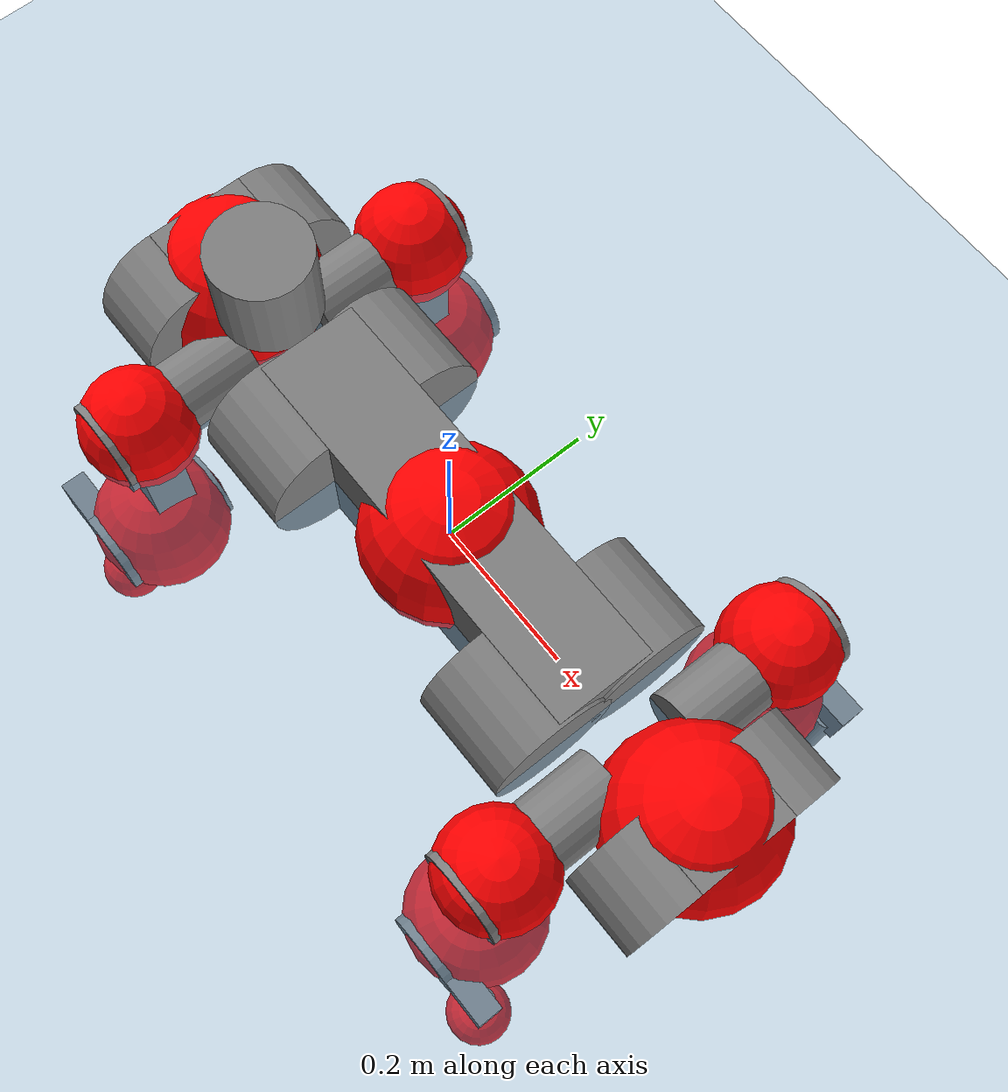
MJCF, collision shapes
<mujoco model="anymal_c">
  <compiler angle="radian" assetdir="assets" balanceinertia="true" inertiafromgeom="false"/>

  <option timestep="0.005" density="1.2" viscosity="2e-05"/>

  <size nkey="1"/>

  <visual>
    <quality shadowsize="8192"/>
    <map shadowclip="0.5"/>
  </visual>

  <default>
    <default class="/">
      <material specular="0" shininess="0.25"/>
      <geom contype="0" conaffinity="0" group="1" solref="-1000 -80"/>
      <site size="0.01 0.005 0.005" group="5"/>
      <general forcelimited="true" forcerange="-80 80" biastype="affine" gainprm="80" biasprm="0 -80 -2"/>
      <default class="anymal_c">
        <joint armature="0.01" damping="0.01" frictionloss="0.1"/>
        <default class="visual">
          <geom type="mesh" group="2"/>
          <default class="visual_zflip"/>
        </default>
        <default class="collision">
          <geom type="cylinder" group="3"/>
          <default class="foot">
            <geom size="0.03 0 0" type="sphere" condim="6" priority="1" friction="0.8 0.02 0.01" solimp="0.015 1 0.03"/>
          </default>
        </default>
      </default>
      <default class="reward_collision_sphere">
        <geom group="5" rgba="1 0 0 1"/>
      </default>
    </default>
  </default>

  <asset>
    <texture type="skybox" colorspace="auto" name="//unnamed_texture_0" builtin="gradient" rgb1="0.95 0.95 0.95" rgb2="0.95 0.95 0.95" width="100" height="600"/>
    <texture type="2d" colorspace="auto" name="texplane" builtin="checker" rgb1="0.345 0.575 0.748" rgb2="0.345 0.575 0.748" markrgb="1 1 1" width="512" height="512"/>
    <texture type="2d" colorspace="linear" name="base" file="base.png"/>
    <texture type="2d" colorspace="linear" name="top_shell" file="top_shell.png"/>
    <texture type="2d" colorspace="linear" name="bottom_shell" file="bottom_shell.png"/>
    <texture type="2d" colorspace="linear" name="remote" file="remote.png"/>
    <texture type="2d" colorspace="linear" name="hatch" file="hatch.png"/>
    <texture type="2d" colorspace="linear" name="handle" file="handle.png"/>
    <texture type="2d" colorspace="linear" name="face" file="face.png"/>
    <texture type="2d" colorspace="linear" name="battery" file="battery.png"/>
    <texture type="2d" colorspace="linear" name="lidar_cage" file="lidar_cage.png"/>
    <texture type="2d" colorspace="linear" name="depth_camera" file="depth_camera.png"/>
    <texture type="2d" colorspace="linear" name="wide_angle_camera" file="wide_angle_camera.png"/>
    <texture type="2d" colorspace="linear" name="lidar" file="lidar.png"/>
    <texture type="2d" colorspace="linear" name="drive" file="drive.png"/>
    <texture type="2d" colorspace="linear" name="hip_l" file="hip_l.png"/>
    <texture type="2d" colorspace="linear" name="shank_l" file="shank_l.png"/>
    <texture type="2d" colorspace="linear" name="foot" file="foot.png"/>
    <texture type="2d" colorspace="linear" name="thigh" file="thigh.png"/>
    <texture type="2d" colorspace="linear" name="shank_r" file="shank_r.png"/>
    <texture type="2d" colorspace="linear" name="hip_r" file="hip_r.png"/>
    <material name="MatPlane" class="/" texture="texplane" texuniform="true" texrepeat="2 2" specular="0.9" shininess="0.5"/>
    <material name="black_plastic" class="/" rgba="0.007 0.007 0.007 1"/>
    <material name="green" class="/" rgba="0.052 0.178 0.033 1"/>
    <material name="red" class="/" rgba="0.178 0.006 0.005 1"/>
    <material name="yellow" class="/" rgba="0.178 0.119 0.006 1"/>
    <material name="lwl" class="/" rgba="0.8 0.8 0.8 1"/>
    <material name="base" class="/" texture="base"/>
    <material name="top_shell" class="/" texture="top_shell"/>
    <material name="bottom_shell" class="/" texture="bottom_shell"/>
    <material name="hip_l" class="/" texture="hip_l"/>
    <material name="thigh" class="/" texture="thigh"/>
    <material name="shank_l" class="/" texture="shank_l"/>
    <material name="foot" class="/" texture="foot"/>
    <material name="hip_r" class="/" texture="hip_r"/>
    <material name="shank" class="/" texture="shank_r"/>
    <material name="hatch" class="/" texture="hatch"/>
    <material name="remote" class="/" texture="remote"/>
    <material name="handle" class="/" texture="handle"/>
    <material name="face" class="/" texture="face"/>
    <material name="depth_camera" class="/" texture="depth_camera"/>
    <material name="wide_angle_camera" class="/" texture="wide_angle_camera"/>
    <material name="battery" class="/" texture="battery"/>
    <material name="lidar_cage" class="/" texture="lidar_cage"/>
    <material name="lidar" class="/" texture="lidar"/>
    <material name="drive" class="/" texture="drive"/>
    <mesh name="base_0" class="/" file="base_0.obj"/>
    <mesh name="base_1" class="/" file="base_1.obj"/>
    <mesh name="base_2" class="/" file="base_2.obj"/>
    <mesh name="base_3" class="/" file="base_3.obj"/>
    <mesh name="base_4" class="/" file="base_4.obj"/>
    <mesh name="base_5" class="/" file="base_5.obj"/>
    <mesh name="top_shell" class="/" file="top_shell.obj"/>
    <mesh name="bottom_shell" class="/" file="bottom_shell.obj"/>
    <mesh name="remote" class="/" file="remote.obj"/>
    <mesh name="handle" class="/" file="handle.obj"/>
    <mesh name="face" class="/" file="face.obj"/>
    <mesh name="wide_angle_camera" class="/" file="wide_angle_camera.obj"/>
    <mesh name="depth_camera" class="/" file="depth_camera.obj"/>
    <mesh name="battery" class="/" file="battery.obj"/>
    <mesh name="lidar_cage" class="/" file="lidar_cage.obj"/>
    <mesh name="lidar" class="/" file="lidar.obj"/>
    <mesh name="drive" class="/" file="drive.obj"/>
    <mesh name="hip_l" class="/" file="hip_l.obj"/>
    <mesh name="thigh" class="/" file="thigh.obj"/>
    <mesh name="shank_l" class="/" file="shank_l.obj"/>
    <mesh name="foot" class="/" file="foot.obj"/>
    <mesh name="hip_r" class="/" file="hip_r.obj"/>
    <mesh name="hatch" class="/" file="hatch.obj"/>
    <mesh name="shank_r" class="/" file="shank_r.obj"/>
  </asset>

  <worldbody>
    <geom name="floor" class="/" size="100 100 0.125" type="plane" group="0" material="MatPlane"/>
    <light name="toplight_shadow" class="/" pos="0 0 5" dir="0.0990148 0.0990148 -0.990148" type="directional" ambient="0.04 0.04 0.04" diffuse="0.55 0.55 0.55" specular="0.12 0.12 0.12"/>
    <light name="toplight_fill" class="/" pos="0 0 5" dir="0.0990148 0.0990148 -0.990148" type="directional" castshadow="false" ambient="0.04 0.04 0.04" diffuse="0.3 0.3 0.3" specular="0.08 0.08 0.08"/>
    <body name="trunk" childclass="anymal_c" pos="0.000536751 -0.000247196 0.00114232" quat="1 -5.58614e-05 -0.000163545 -6.73686e-05">
      <inertial pos="0.00169395 0.000818803 0.0372737" quat="0.500037 0.499846 0.500353 0.499764" mass="15.5908" diaginertia="0.524717 0.611029 0.104344"/>
      <joint name="//unnamed_joint_0" type="free" armature="0" damping="0" frictionloss="0"/>
      <geom name="//unnamed_geom_1" class="visual" material="green" mesh="base_0"/>
      <geom name="//unnamed_geom_2" class="visual" material="yellow" mesh="base_1"/>
      <geom name="//unnamed_geom_3" class="visual" material="red" mesh="base_2"/>
      <geom name="//unnamed_geom_4" class="visual" material="black_plastic" mesh="base_3"/>
      <geom name="//unnamed_geom_5" class="visual" material="lwl" mesh="base_4"/>
      <geom name="//unnamed_geom_6" class="visual" material="base" mesh="base_5"/>
      <geom name="trunk_1" class="collision" size="0.27454 0.0662683 0.0852021" type="box"/>
      <geom name="trunk_2" class="collision" size="0.0852021 0.068635" pos="0.210212 0.0703095 0" quat="0.707107 0 0.707107 0"/>
      <geom name="trunk_3" class="collision" size="0.0852021 0.068635" pos="-0.210212 0.0703095 0" quat="0.707107 0 0.707107 0"/>
      <geom name="trunk_4" class="collision" size="0.0852021 0.068635" pos="0.210212 -0.0703095 0" quat="0.707107 0 0.707107 0"/>
      <geom name="trunk_5" class="collision" size="0.0852021 0.068635" pos="-0.210212 -0.0703095 0" quat="0.707107 0 0.707107 0"/>
      <geom name="//unnamed_geom_12" class="visual" material="top_shell" mesh="top_shell"/>
      <geom name="//unnamed_geom_13" class="visual" material="bottom_shell" mesh="bottom_shell"/>
      <geom name="//unnamed_geom_14" class="visual" material="remote" mesh="remote"/>
      <geom name="//unnamed_geom_15" class="visual" material="handle" mesh="handle"/>
      <geom name="//unnamed_geom_16" class="visual" pos="0.400611 0 0" quat="1 0 0 0" material="face" mesh="face"/>
      <geom name="trunk_6" class="collision" size="0.052068 0.0662683 0.0852021" pos="0.453768 0 0" type="box"/>
      <geom name="//unnamed_geom_18" class="collision" size="0.0852021 0.052068" pos="0.453768 0.0703095 0" quat="0.707107 0 0.707107 0"/>
      <geom name="//unnamed_geom_19" class="collision" size="0.0852021 0.052068" pos="0.453768 -0.0703095 0" quat="0.707107 0 0.707107 0"/>
      <geom name="//unnamed_geom_20" class="visual" pos="0.446177 0 -0.0246396" quat="0.965926 0 0.258819 0" material="depth_camera" mesh="depth_camera"/>
      <geom name="//unnamed_geom_21" class="visual" pos="0.49581 0 0.0130113" material="wide_angle_camera" mesh="wide_angle_camera"/>
      <geom name="//unnamed_geom_22" class="visual_zflip" pos="-0.400611 0 0" quat="0 0 0 1" material="face" mesh="face"/>
      <geom name="trunk_7" class="collision" size="0.052068 0.0662683 0.0852021" pos="-0.453768 0 0" quat="0 0 0 1" type="box"/>
      <geom name="//unnamed_geom_24" class="collision" size="0.0852021 0.052068" pos="-0.453768 -0.0703095 0" quat="0 -0.707107 0 0.707107"/>
      <geom name="//unnamed_geom_25" class="collision" size="0.0852021 0.052068" pos="-0.453768 0.0703095 0" quat="0 -0.707107 0 0.707107"/>
      <geom name="//unnamed_geom_26" class="visual" pos="-0.446177 0 -0.0246396" quat="0 -0.258819 0 0.965926" material="depth_camera" mesh="depth_camera"/>
      <geom name="//unnamed_geom_27" class="visual_zflip" pos="-0.49581 0 0.0130113" quat="0 0 0 1" material="wide_angle_camera" mesh="wide_angle_camera"/>
      <geom name="//unnamed_geom_28" class="visual" material="battery" mesh="battery"/>
      <geom name="//unnamed_geom_29" class="visual" pos="0 0.0772917 0.0259888" quat="0.683013 -0.183013 0.183013 0.683013" material="depth_camera" mesh="depth_camera"/>
      <geom name="//unnamed_geom_30" class="visual" pos="0 -0.0772917 0.0259888" quat="0.683013 0.183013 0.183013 -0.683013" material="depth_camera" mesh="depth_camera"/>
      <geom name="//unnamed_geom_31" class="visual" pos="-0.351803 0 0.0638831" quat="1 0 0 0" material="lidar_cage" mesh="lidar_cage"/>
      <geom name="trunk_8" class="collision" size="0.0662683 0.0568014" pos="-0.351803 0 0.116032"/>
      <geom name="//unnamed_geom_33" class="visual" pos="-0.351803 1.49014e-05 0.123594" quat="0.707107 0 0 -0.707107" material="lidar" mesh="lidar"/>
      <geom name="//unnamed_geom_34" class="visual" pos="0.289851 0.104412 2.33332e-09" quat="0.258819 0.965926 0 0" material="drive" mesh="drive"/>
      <geom name="//unnamed_geom_35" class="visual" pos="0.289851 -0.104412 -2.33332e-09" quat="0.258819 -0.965926 0 0" material="drive" mesh="drive"/>
      <geom name="//unnamed_geom_36" class="visual" pos="-0.289851 0.104412 -2.33332e-09" quat="0 0 0.965926 -0.258819" material="drive" mesh="drive"/>
      <geom name="//unnamed_geom_37" class="visual" pos="-0.289851 -0.104412 2.33332e-09" quat="0 0 -0.965926 -0.258819" material="drive" mesh="drive"/>
      <geom name="//unnamed_geom_38" class="visual" pos="0.112113 0 0.0634485" quat="1 0 0 0" material="hatch" mesh="hatch"/>
      <geom name="//unnamed_geom_39" class="reward_collision_sphere" size="0.113603"/>
      <geom name="//unnamed_geom_40" class="reward_collision_sphere" size="0.113603" pos="0.434921 0 0"/>
      <geom name="//unnamed_geom_41" class="reward_collision_sphere" size="0.113603" pos="-0.434921 0 0"/>
      <site name="imu" pos="0.247959 0.0205369 0.0339937" size="0.0094669"/>
      <camera name="track" pos="0 -2.00884 0" quat="0.707107 0.707107 0 0" mode="trackcom"/>
      <camera name="ego_camera" pos="0.434921 0 -0.0347663" quat="-0.5 -0.5 0.5 0.5"/>
      <body name="LF_HIP" pos="0.289549 0.10798 0.00215324" quat="0.258776 0.965937 0.00010546 -0.000373316">
        <inertial pos="0.0547759 -0.0157254 -0.00613996" quat="-0.125604 0.707185 -0.136289 0.682304" mass="2.27582" diaginertia="0.00488114 0.00472673 0.00158703"/>
        <joint name="LF_HAA" pos="0 0 0" axis="0.999999 -0.00021549 -0.00162316" range="-0.704066 0.541535" armature="0.0093987" damping="0" frictionloss="0.107005"/>
        <geom name="//unnamed_geom_42" class="visual" pos="0 0.000137258 -2.25446e-05" quat="0.258819 -0.965926 0 0" material="hip_l" mesh="hip_l"/>
        <geom name="//unnamed_geom_43" class="visual" pos="0.0578929 -0.0706009 -0.0397609" quat="0.183013 -0.683013 0.683013 0.183013" material="drive" mesh="drive"/>
        <geom name="//unnamed_geom_44" class="collision" size="0.0473345 0.0662683" pos="0.0578929 -0.0120127 -0.00600153" quat="-0.353553 -0.612372 0.612372 -0.353553"/>
        <body name="LF_THIGH" pos="0.057051 -0.0711743 -0.0367938" quat="0.183095 -0.683193 0.682933 0.182557">
          <inertial pos="0.0299968 -0.000694986 -0.212702" quat="0.993422 -0.0125722 -0.0855209 0.0751117" mass="2.65436" diaginertia="0.0259038 0.0304585 0.00203844"/>
          <joint name="LF_HFE" pos="0 0 0" axis="0.999997 0.00234789 0.00118149" range="-3.19505 3.14311" armature="0.0087726" damping="0.0164066" frictionloss="0.0944062"/>
          <geom name="//unnamed_geom_45" class="visual" pos="-0.000754643 -1.18914e-06 0" quat="0.707107 0 0 -0.707107" material="thigh" mesh="thigh"/>
          <geom name="//unnamed_geom_46" class="collision" size="0.0615349 0.0378676" pos="0.0386597 0 0" quat="0.5 0.5 -0.5 -0.5"/>
          <geom name="//unnamed_geom_47" class="collision" size="0.0355009 0.0284007 0.133781" pos="0.0289948 0 -0.122824" quat="0.707107 0 0 -0.707107" type="box"/>
          <geom name="//unnamed_geom_48" class="visual" pos="0.0969391 0 -0.24771" quat="1 0 0 0" material="drive" mesh="drive"/>
          <geom name="//unnamed_geom_49" class="collision" size="0.0473345 0.0662683" pos="0.0292847 0 -0.24771" quat="0.707107 0 0.707107 0"/>
          <geom name="//unnamed_geom_50" class="reward_collision_sphere" size="0.0757352" pos="0.0241623 0 0"/>
          <body name="LF_SHANK" pos="0.0996991 -0.000586698 -0.248285" quat="1 -0.000108128 7.83911e-05 -1.88777e-05">
            <inertial pos="0.00735788 -0.0608918 -0.0697659" quat="0.993004 -0.11603 0.000803274 -0.0218869" mass="0.501447" diaginertia="0.00869011 0.00955893 0.000563906"/>
            <joint name="LF_KFE" pos="0 0 0" axis="0.999979 -0.00549918 -0.00352985" stiffness="0.00124881" range="-3.10261 3.1883" armature="0.00856685" damping="0.000997132" frictionloss="0.0877879"/>
            <geom name="//unnamed_geom_51" class="visual" pos="-0.000246072 -0.00131207 0" quat="0.707107 0 0 -0.707107" material="shank_l" mesh="shank_l"/>
            <geom name="LF_kfe_act" class="collision" size="0.0568014 0.0189338" pos="0.0193298 0 0" quat="0.5 0.5 -0.5 -0.5"/>
            <geom name="//unnamed_geom_53" class="collision" size="0.0544337 0.0319508 0.0179871" pos="0.0193298 -0.0577532 0" quat="0.5 0.5 -0.5 -0.5" type="box"/>
            <geom name="//unnamed_geom_54" class="visual" pos="0.0126128 -0.0887617 -0.293749" quat="0.382683 0 0 -0.92388" material="foot" mesh="foot"/>
            <geom name="LF_calf" class="collision" size="0.0165671 0.133722" pos="0.0126127 -0.0883388 -0.146875" quat="0.707107 0 0 -0.707107"/>
            <geom name="LF_foot" class="foot" size="0.0295593" pos="0.0126127 -0.0883388 -0.274193" quat="0.707107 0 0 -0.707107"/>
            <geom name="//unnamed_geom_57" class="reward_collision_sphere" size="0.094669" pos="-0.0483246 0 0"/>
            <geom name="//unnamed_geom_58" class="reward_collision_sphere" size="0.0473345" pos="0.0126127 -0.0883388 -0.274193"/>
            <site name="LF_foot" class="foot" pos="0.0126127 -0.0883388 -0.274193" quat="0.707107 0 0 -0.707107" size="0.0094669"/>
          </body>
        </body>
      </body>
      <body name="RF_HIP" pos="0.287789 -0.103495 0.00259874" quat="0.258948 -0.965891 -0.00089999 -8.22958e-05">
        <inertial pos="0.0521181 0.015643 -0.0070371" quat="0.141372 0.677937 0.130028 0.709583" mass="2.2474" diaginertia="0.00486392 0.00492973 0.00159589"/>
        <joint name="RF_HAA" pos="0 0 0" axis="0.999943 -0.0074305 -0.00764804" range="-0.470687 0.672179" armature="0.0104142" damping="0" frictionloss="0.104791"/>
        <geom name="//unnamed_geom_59" class="visual" pos="0 -0.000137257 -2.25445e-05" quat="0.258819 0.965926 0 0" material="hip_r" mesh="hip_r"/>
        <geom name="//unnamed_geom_60" class="visual" pos="0.0578929 0.0706009 -0.0397609" quat="0.183013 0.683013 0.683013 -0.183013" material="drive" mesh="drive"/>
        <geom name="//unnamed_geom_61" class="collision" size="0.0473345 0.0662683" pos="0.0578929 0.0120127 -0.00600153" quat="-0.353553 0.612372 0.612372 0.353553"/>
        <body name="RF_THIGH" pos="0.0571484 0.0705073 -0.0383206" quat="0.183044 0.683706 0.682323 -0.182967">
          <inertial pos="0.0271566 -0.000669078 -0.215397" quat="0.993149 0.0052742 -0.081714 0.0833655" mass="2.63508" diaginertia="0.025087 0.0300156 0.00213574"/>
          <joint name="RF_HFE" pos="0 0 0" axis="0.999977 0.0067422 -0.000535196" stiffness="0.00190711" range="-3.13558 3.08918" armature="0.00804582" damping="0.0205349" frictionloss="0.0891464"/>
          <geom name="//unnamed_geom_62" class="visual" pos="-0.000754643 -1.18914e-06 0" quat="0.707107 0 0 -0.707107" material="thigh" mesh="thigh"/>
          <geom name="//unnamed_geom_63" class="collision" size="0.0615349 0.0378676" pos="0.0386597 0 0" quat="0.5 0.5 0.5 0.5"/>
          <geom name="//unnamed_geom_64" class="collision" size="0.0355009 0.0284007 0.133781" pos="0.0289948 0 -0.122824" quat="0.707107 0 0 0.707107" type="box"/>
          <geom name="//unnamed_geom_65" class="visual" pos="0.0969391 0 -0.24771" quat="1 0 0 0" material="drive" mesh="drive"/>
          <geom name="//unnamed_geom_66" class="collision" size="0.0473345 0.0662683" pos="0.0292847 0 -0.24771" quat="0.707107 0 0.707107 0"/>
          <geom name="//unnamed_geom_67" class="reward_collision_sphere" size="0.0757352" pos="0.0241623 0 0"/>
          <body name="RF_SHANK" pos="0.0973562 0.00184575 -0.247675" quat="1 0.000497537 -0.000687864 -0.000152017">
            <inertial pos="0.00355435 0.0616745 -0.068756" quat="0.9939 0.107978 -0.000927493 0.0224193" mass="0.493883" diaginertia="0.00865684 0.00950809 0.000541301"/>
            <joint name="RF_KFE" pos="0 0 0" axis="0.999953 -0.00903964 0.00356106" range="-3.13749 3.12497" armature="0.00958235" damping="0" frictionloss="0.0818695"/>
            <geom name="//unnamed_geom_68" class="visual" pos="-0.000246071 0.00131207 0" quat="0.707107 0 0 0.707107" material="shank" mesh="shank_r"/>
            <geom name="RF_kfe_act" class="collision" size="0.0568014 0.0189338" pos="0.0193298 0 0" quat="0.5 0.5 0.5 0.5"/>
            <geom name="//unnamed_geom_70" class="collision" size="0.0544337 0.0319508 0.0179871" pos="0.0193298 0.0577532 0" quat="0.5 0.5 0.5 0.5" type="box"/>
            <geom name="//unnamed_geom_71" class="visual" pos="0.0126127 0.0887617 -0.293749" quat="0.382683 0 0 0.92388" material="foot" mesh="foot"/>
            <geom name="RF_calf" class="collision" size="0.0165671 0.133722" pos="0.0126127 0.0883388 -0.146875" quat="0.707107 0 0 0.707107"/>
            <geom name="RF_foot" class="foot" size="0.0283542" pos="0.0126127 0.0883388 -0.274193" quat="0.707107 0 0 0.707107"/>
            <geom name="//unnamed_geom_74" class="reward_collision_sphere" size="0.094669" pos="-0.0483246 0 0"/>
            <geom name="//unnamed_geom_75" class="reward_collision_sphere" size="0.0473345" pos="0.0126127 0.0883388 -0.274193"/>
            <site name="RF_foot" class="foot" pos="0.0126127 0.0883388 -0.274193" quat="0.707107 0 0 0.707107" size="0.0094669"/>
          </body>
        </body>
      </body>
      <body name="LH_HIP" pos="-0.289247 0.102904 0.00201797" quat="0.00151735 0.000125691 0.966032 -0.258419">
        <inertial pos="0.0524287 0.0152793 -0.00602724" quat="0.142036 0.680156 0.139026 0.70561" mass="2.28026" diaginertia="0.00462699 0.00504399 0.00155579"/>
        <joint name="LH_HAA" pos="0 0 0" axis="0.999997 -0.00161689 -0.00196749" range="-0.499242 0.716588" armature="0.00978107" damping="0.0010505" frictionloss="0.0931991"/>
        <geom name="//unnamed_geom_76" class="visual" pos="0 -0.000137257 -2.25445e-05" quat="-0.258819 -0.965926 0 0" material="hip_r" mesh="hip_r"/>
        <geom name="//unnamed_geom_77" class="visual" pos="0.0578929 0.0706009 -0.0397609" quat="0.183013 0.683013 0.683013 -0.183013" material="drive" mesh="drive"/>
        <geom name="//unnamed_geom_78" class="collision" size="0.0473345 0.0662683" pos="0.0578929 0.0120127 -0.00600153" quat="-0.353553 0.612372 0.612372 0.353553"/>
        <body name="LH_THIGH" pos="0.0574524 0.0722872 -0.0395955" quat="0.183046 0.682704 0.683489 -0.182351">
          <inertial pos="0.0280643 -0.00168167 -0.211818" quat="0.992767 -0.00543174 -0.0809694 0.0884806" mass="2.56016" diaginertia="0.0247056 0.030052 0.00206805"/>
          <joint name="LH_HFE" pos="0 0 0" axis="0.999978 -0.00655334 0.000877616" stiffness="0.0104733" range="-3.18458 3.12376" armature="0.00898532" damping="0.0171369" frictionloss="0.107722"/>
          <geom name="//unnamed_geom_79" class="visual" pos="-0.000754643 -1.18914e-06 0" quat="0.707107 0 0 -0.707107" material="thigh" mesh="thigh"/>
          <geom name="//unnamed_geom_80" class="collision" size="0.0615349 0.0378676" pos="0.0386597 0 0" quat="0.5 0.5 -0.5 -0.5"/>
          <geom name="//unnamed_geom_81" class="collision" size="0.0355009 0.0284007 0.133781" pos="0.0289948 0 -0.122824" quat="0.707107 0 0 -0.707107" type="box"/>
          <geom name="//unnamed_geom_82" class="visual" pos="0.0969391 0 -0.24771" quat="1 0 0 0" material="drive" mesh="drive"/>
          <geom name="//unnamed_geom_83" class="collision" size="0.0473345 0.0662683" pos="0.0292847 0 -0.24771" quat="0.707107 0 0.707107 0"/>
          <geom name="//unnamed_geom_84" class="reward_collision_sphere" size="0.0757352" pos="0.0241623 0 0"/>
          <body name="LH_SHANK" pos="0.0947953 -0.00215038 -0.247506" quat="1 0.000485538 0.000390649 4.85076e-05">
            <inertial pos="0.00619208 0.0633096 -0.068655" quat="0.992914 0.116088 -0.00111566 0.0253962" mass="0.483654" diaginertia="0.00843409 0.00893136 0.000561812"/>
            <joint name="LH_KFE" pos="0 0 0" axis="0.999986 -0.00222312 -0.00485841" range="-3.12624 3.18064" armature="0.00937775" damping="0.0158598" frictionloss="0.0934292"/>
            <geom name="//unnamed_geom_85" class="visual" pos="-0.000246071 0.00131207 0" quat="-0.707107 0 0 -0.707107" material="shank" mesh="shank_r"/>
            <geom name="LH_kfe_act" class="collision" size="0.0568014 0.0189338" pos="0.0193298 0 0" quat="0.5 0.5 -0.5 -0.5"/>
            <geom name="//unnamed_geom_87" class="collision" size="0.0544337 0.0319508 0.0179871" pos="0.0193298 0.0577532 0" quat="0.5 0.5 -0.5 -0.5" type="box"/>
            <geom name="//unnamed_geom_88" class="visual" pos="0.0126127 0.0887617 -0.293749" quat="-0.382683 0 0 -0.92388" material="foot" mesh="foot"/>
            <geom name="LH_calf" class="collision" size="0.0165671 0.133722" pos="0.0126127 0.0883388 -0.146875" quat="0.707107 0 0 -0.707107"/>
            <geom name="LH_foot" class="foot" size="0.0315173" pos="0.0126127 0.0883388 -0.274193" quat="0.707107 0 0 -0.707107"/>
            <geom name="//unnamed_geom_91" class="reward_collision_sphere" size="0.094669" pos="-0.0483246 0 0"/>
            <geom name="//unnamed_geom_92" class="reward_collision_sphere" size="0.0473345" pos="0.0126127 0.0883388 -0.274193"/>
            <site name="LH_foot" class="foot" pos="0.0126127 0.0883388 -0.274193" quat="0.707107 0 0 -0.707107" size="0.0094669"/>
          </body>
        </body>
      </body>
      <body name="RH_HIP" pos="-0.291699 -0.10486 0.00029184" quat="-6.91093e-06 0.000377086 -0.965926 -0.258819">
        <inertial pos="0.0537413 -0.0177617 -0.00724401" quat="-0.127926 0.709803 -0.136148 0.679175" mass="2.38745" diaginertia="0.00483223 0.00489613 0.00166116"/>
        <joint name="RH_HAA" pos="0 0 0" axis="0.99995 0.00222514 0.00973067" range="-0.779589 0.495307" armature="0.00936525" damping="0.00997592" frictionloss="0.0860149"/>
        <geom name="//unnamed_geom_93" class="visual" pos="0 0.000137258 -2.25446e-05" quat="-0.258819 0.965926 0 0" material="hip_l" mesh="hip_l"/>
        <geom name="//unnamed_geom_94" class="visual" pos="0.0578929 -0.0706009 -0.0397609" quat="-0.183013 0.683013 -0.683013 -0.183013" material="drive" mesh="drive"/>
        <geom name="//unnamed_geom_95" class="collision" size="0.0473345 0.0662683" pos="0.0578929 -0.0120127 -0.00600153" quat="0.353553 0.612372 -0.612372 0.353553"/>
        <body name="RH_THIGH" pos="0.0574969 -0.0721879 -0.0375253" quat="-0.183377 0.682897 -0.682912 -0.183455">
          <inertial pos="0.0328348 -0.00269004 -0.213698" quat="0.993223 -0.0106223 -0.0736132 0.0893079" mass="2.57426" diaginertia="0.0248661 0.0298491 0.00205993"/>
          <joint name="RH_HFE" pos="0 0 0" axis="0.999928 -0.00892453 0.00798651" range="-3.15905 3.1171" armature="0.00920784" damping="0" frictionloss="0.0841289"/>
          <geom name="//unnamed_geom_96" class="visual" pos="-0.000754643 -1.18914e-06 0" quat="0.707107 0 0 -0.707107" material="thigh" mesh="thigh"/>
          <geom name="//unnamed_geom_97" class="collision" size="0.0615349 0.0378676" pos="0.0386597 0 0" quat="0.5 0.5 0.5 0.5"/>
          <geom name="//unnamed_geom_98" class="collision" size="0.0355009 0.0284007 0.133781" pos="0.0289948 0 -0.122824" quat="0.707107 0 0 0.707107" type="box"/>
          <geom name="//unnamed_geom_99" class="visual" pos="0.0969391 0 -0.24771" quat="1 0 0 0" material="drive" mesh="drive"/>
          <geom name="//unnamed_geom_100" class="collision" size="0.0473345 0.0662683" pos="0.0292847 0 -0.24771" quat="0.707107 0 0.707107 0"/>
          <geom name="//unnamed_geom_101" class="reward_collision_sphere" size="0.0757352" pos="0.0241623 0 0"/>
          <body name="RH_SHANK" pos="0.097991 0.00176973 -0.248584" quat="0.999999 2.76388e-05 0.00045006 -0.000902778">
            <inertial pos="0.00805986 -0.0614299 -0.069605" quat="0.992894 -0.116383 -0.000999027 -0.0248005" mass="0.503853" diaginertia="0.00869887 0.0100377 0.000574334"/>
            <joint name="RH_KFE" pos="0 0 0" axis="0.999964 -0.00843664 -0.000286821" stiffness="0.000466746" range="-3.12575 3.09532" armature="0.00923159" damping="0.00619511" frictionloss="0.0837335"/>
            <geom name="//unnamed_geom_102" class="visual" pos="-0.000246072 -0.00131207 0" quat="0.707107 0 0 -0.707107" material="shank_l" mesh="shank_l"/>
            <geom name="RH_kfe_act" class="collision" size="0.0568014 0.0189338" pos="0.0193298 0 0" quat="0.5 0.5 0.5 0.5"/>
            <geom name="//unnamed_geom_104" class="collision" size="0.0544337 0.0319508 0.0179871" pos="0.0193298 -0.0577532 0" quat="0.5 0.5 0.5 0.5" type="box"/>
            <geom name="//unnamed_geom_105" class="visual" pos="0.0126128 -0.0887617 -0.293749" quat="0.382683 0 0 -0.92388" material="foot" mesh="foot"/>
            <geom name="RH_calf" class="collision" size="0.0165671 0.133722" pos="0.0126127 -0.0883388 -0.146875" quat="0.707107 0 0 0.707107"/>
            <geom name="RH_foot" class="foot" size="0.0219683" pos="0.0126127 -0.0883388 -0.274193" quat="0.707107 0 0 0.707107"/>
            <geom name="//unnamed_geom_108" class="reward_collision_sphere" size="0.094669" pos="-0.0483246 0 0"/>
            <geom name="//unnamed_geom_109" class="reward_collision_sphere" size="0.0473345" pos="0.0126127 -0.0883388 -0.274193"/>
            <site name="RH_foot" class="foot" pos="0.0126127 -0.0883388 -0.274193" quat="0.707107 0 0 0.707107" size="0.0094669"/>
          </body>
        </body>
      </body>
    </body>
  </worldbody>

  <contact>
    <pair class="/" geom1="floor" geom2="LF_foot" name="//unnamed_contact_0"/>
    <pair class="/" geom1="floor" geom2="RF_foot" name="//unnamed_contact_1"/>
    <pair class="/" geom1="floor" geom2="LH_foot" name="//unnamed_contact_2"/>
    <pair class="/" geom1="floor" geom2="RH_foot" name="//unnamed_contact_3"/>
  </contact>

  <actuator>
    <general name="LF_HAA" class="/" joint="LF_HAA" forcerange="-77.9766 77.9766" gainprm="77.4449" biasprm="0 -77.4449 -1.92337"/>
    <general name="LF_HFE" class="/" joint="LF_HFE" forcerange="-80.9065 80.9065" gainprm="77.4449" biasprm="0 -77.4449 -1.92337"/>
    <general name="LF_KFE" class="/" joint="LF_KFE" forcerange="-82.8971 82.8971" gainprm="77.4449" biasprm="0 -77.4449 -1.92337"/>
    <general name="RF_HAA" class="/" joint="RF_HAA" forcerange="-73.7389 73.7389" gainprm="77.4449" biasprm="0 -77.4449 -1.92337"/>
    <general name="RF_HFE" class="/" joint="RF_HFE" forcerange="-84.8025 84.8025" gainprm="77.4449" biasprm="0 -77.4449 -1.92337"/>
    <general name="RF_KFE" class="/" joint="RF_KFE" forcerange="-77.7527 77.7527" gainprm="77.4449" biasprm="0 -77.4449 -1.92337"/>
    <general name="LH_HAA" class="/" joint="LH_HAA" forcerange="-78.0996 78.0996" gainprm="77.4449" biasprm="0 -77.4449 -1.92337"/>
    <general name="LH_HFE" class="/" joint="LH_HFE" forcerange="-78.7541 78.7541" gainprm="77.4449" biasprm="0 -77.4449 -1.92337"/>
    <general name="LH_KFE" class="/" joint="LH_KFE" forcerange="-75.8964 75.8964" gainprm="77.4449" biasprm="0 -77.4449 -1.92337"/>
    <general name="RH_HAA" class="/" joint="RH_HAA" forcerange="-76.0022 76.0022" gainprm="77.4449" biasprm="0 -77.4449 -1.92337"/>
    <general name="RH_HFE" class="/" joint="RH_HFE" forcerange="-69.0201 69.0201" gainprm="77.4449" biasprm="0 -77.4449 -1.92337"/>
    <general name="RH_KFE" class="/" joint="RH_KFE" forcerange="-82.7359 82.7359" gainprm="77.4449" biasprm="0 -77.4449 -1.92337"/>
  </actuator>

  <sensor>
    <gyro site="imu" name="imu_angular_velocity"/>
    <velocimeter site="imu" name="imu_linear_velocity"/>
    <framelinvel objtype="site" objname="LF_foot" name="LF_foot_global_linear_velocity"/>
    <framelinvel objtype="site" objname="RF_foot" name="RF_foot_global_linear_velocity"/>
    <framelinvel objtype="site" objname="LH_foot" name="LH_foot_global_linear_velocity"/>
    <framelinvel objtype="site" objname="RH_foot" name="RH_foot_global_linear_velocity"/>
  </sensor>

  <keyframe>
    <key name="home" qpos="0 0 0.55 1 0 0 0 0 0.4 -0.8 0 -0.4 0.8 0 -0.4 0.8 0 0.4 -0.8"/>
  </keyframe>
</mujoco>
